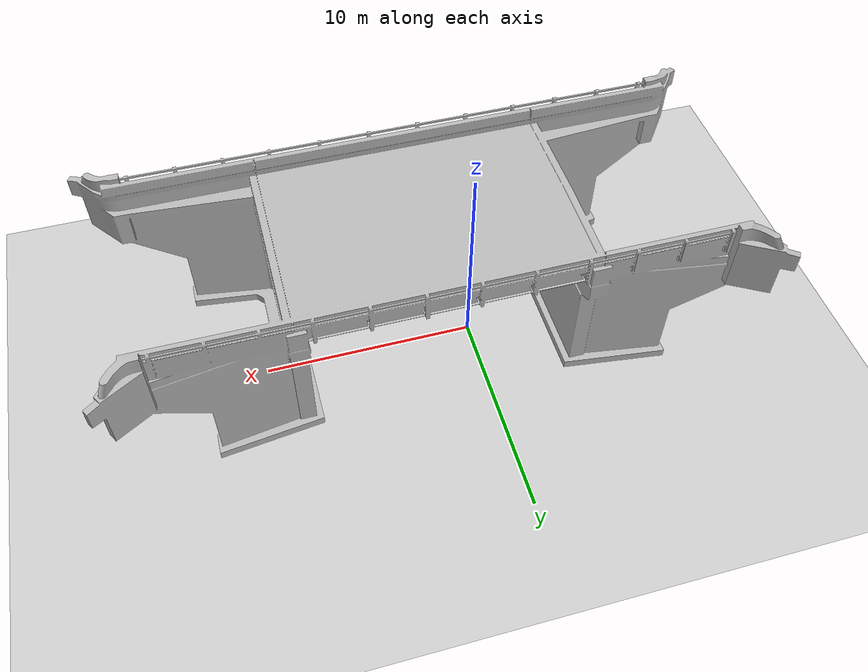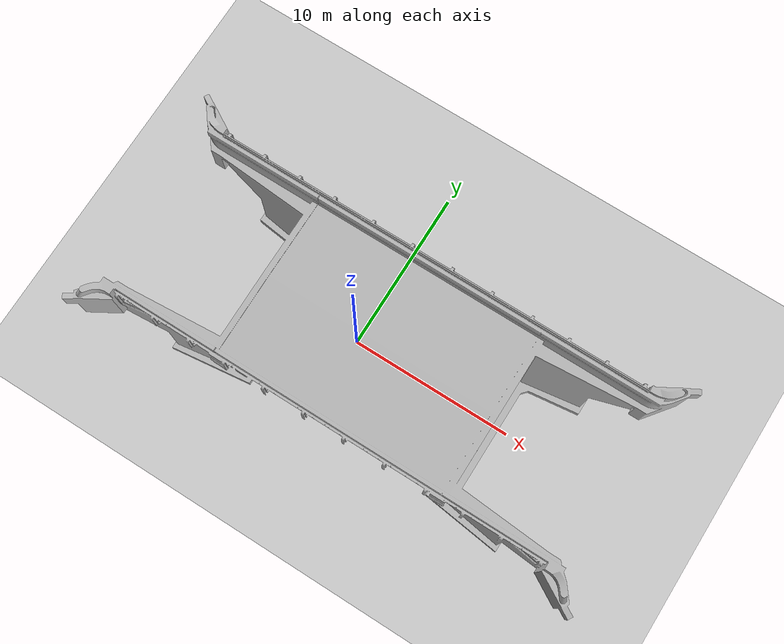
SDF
<?xml version="1.0" ?>
<sdf version="1.4">
  <world name="default">
    <scene>
      <ambient>0.5 0.5 0.5 1</ambient>
      <background>0.5 0.5 0.5 1</background>
      <shadows>false</shadows>
    </scene>
    <physics type="ode">
      <gravity>0 0 -9.8</gravity>
      <ode>
        <solver>
          <type>quick</type>
          <iters>10</iters>
          <sor>1.3</sor>
        </solver>
        <constraints>
          <cfm>0.0</cfm>
          <erp>0.2</erp>
          <contact_max_correcting_vel>10</contact_max_correcting_vel>
          <contact_surface_layer>0.001</contact_surface_layer>
        </constraints>
      </ode>
      <max_step_size>0.01</max_step_size>
      <real_time_update_rate>100</real_time_update_rate>
    </physics>

    <include>
      <uri>model://ground_plane</uri>
    </include>
    <include>
      <uri>model://sun</uri>
    </include>

    <model name="bridge">
      <pose>1 -6 4  0 0 0</pose>
      <static>true</static>
      <link name="body">
        <visual name="visual">
          <geometry>
            <mesh><uri>file:///home/slz/inspection_ws/src/inspection_sim/dji_gazebo/models/bridge_model2.stl</uri></mesh>
          </geometry>
        </visual>

        <collision name="collision">
          <geometry>
	        <mesh><uri>file:///home/slz/inspection_ws/src/inspection_sim/dji_gazebo/models/bridge_model2.stl</uri></mesh>
          </geometry>
        </collision>

        <sensor name='bridge_contact' type='contact'>
          <contact>
            <collision>collision</collision>
          </contact>
        </sensor>

      </link>
    </model>

  </world>
</sdf>
